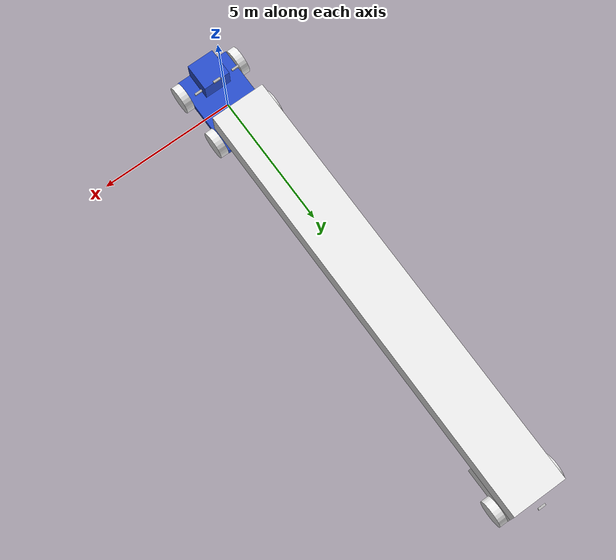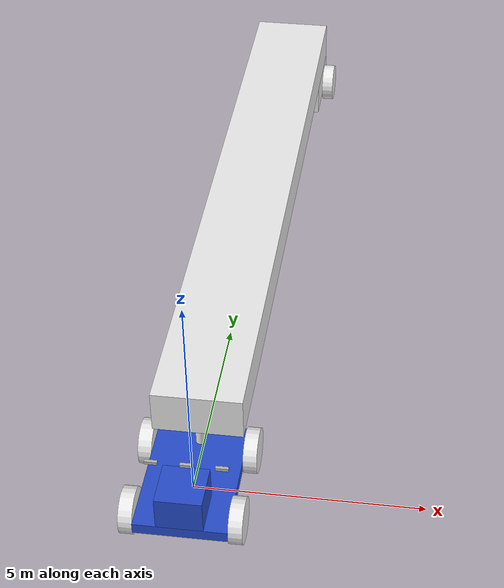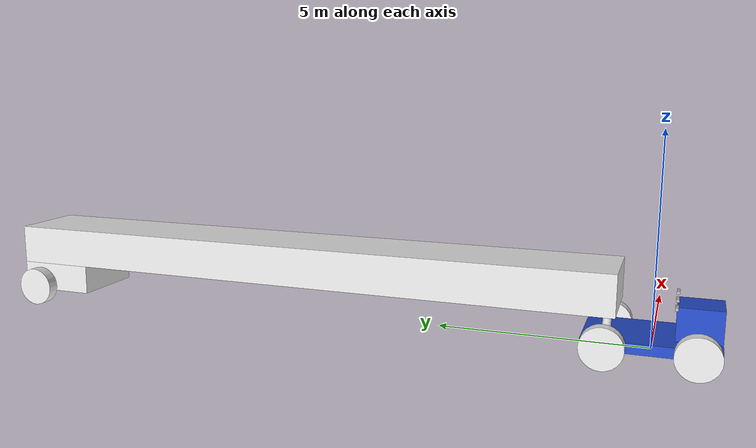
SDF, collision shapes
<?xml version='1.0'?>
<sdf version='1.7'>
  <model name='TractorTrailer_0'>
    <link name='Tractor_Body'>
      <inertial>
        <pose>0 0 0.250023 0 -0 0</pose>
        <mass>6501</mass>
        <inertia>
          <ixx>4909.04</ixx>
          <ixy>0</ixy>
          <ixz>0</ixz>
          <iyy>2200.71</iyy>
          <iyz>0</iyz>
          <izz>7041.84</izz>
        </inertia>
      </inertial>
      <self_collide>0</self_collide>
      <enable_wind>0</enable_wind>
      <kinematic>0</kinematic>
      <pose>0 0 0 0 -0 0</pose>
      <visual name='Tractor_Body_visual'>
        <pose>0 0 0.25 0 -0 0</pose>
        <geometry>
          <box>
            <size>2 3 0.25</size>
          </box>
        </geometry>
        <material>
          <script>
            <name>Gazebo/Blue</name>
            <uri>file://media/materials/scripts/gazebo.material</uri>
          </script>
          <shader type='pixel'/>
        </material>
        <transparency>0</transparency>
        <cast_shadows>1</cast_shadows>
      </visual>
      <visual name='Tractor_Body_fixed_joint_lump__Tractor_Weighted_Base_visual_1'>
        <pose>0 0 0.25 0 -0 0</pose>
        <geometry>
          <box>
            <size>2 3 0.25</size>
          </box>
        </geometry>
        <material>
          <script>
            <name>Gazebo/Blue</name>
            <uri>file://media/materials/scripts/gazebo.material</uri>
          </script>
          <shader type='pixel'/>
        </material>
        <transparency>0</transparency>
        <cast_shadows>1</cast_shadows>
      </visual>
      <visual name='Tractor_Body_fixed_joint_lump__Tractor_Cab_visual_2'>
        <pose>0 -1 0.65 0 -0 0</pose>
        <geometry>
          <box>
            <size>1 1 1</size>
          </box>
        </geometry>
        <material>
          <script>
            <name>Gazebo/Blue</name>
            <uri>file://media/materials/scripts/gazebo.material</uri>
          </script>
          <shader type='pixel'/>
        </material>
        <transparency>0</transparency>
        <cast_shadows>1</cast_shadows>
      </visual>
      <collision name='Tractor_Body_collision'>
        <laser_retro>0</laser_retro>
        <max_contacts>10</max_contacts>
        <pose>0 0 0.25 0 -0 0</pose>
        <geometry>
          <box>
            <size>2 3 0.25</size>
          </box>
        </geometry>
        <surface>
          <friction>
            <ode>
              <mu>1</mu>
              <mu2>1</mu2>
              <fdir1>0 0 0</fdir1>
              <slip1>0</slip1>
              <slip2>0</slip2>
            </ode>
            <torsional>
              <coefficient>1</coefficient>
              <patch_radius>0</patch_radius>
              <surface_radius>0</surface_radius>
              <use_patch_radius>1</use_patch_radius>
              <ode>
                <slip>0</slip>
              </ode>
            </torsional>
          </friction>
          <bounce>
            <restitution_coefficient>0</restitution_coefficient>
            <threshold>1e+06</threshold>
          </bounce>
          <contact>
            <collide_without_contact>0</collide_without_contact>
            <collide_without_contact_bitmask>1</collide_without_contact_bitmask>
            <collide_bitmask>1</collide_bitmask>
            <ode>
              <soft_cfm>0</soft_cfm>
              <soft_erp>0.2</soft_erp>
              <kp>1e+13</kp>
              <kd>1</kd>
              <max_vel>0.01</max_vel>
              <min_depth>0</min_depth>
            </ode>
            <bullet>
              <split_impulse>1</split_impulse>
              <split_impulse_penetration_threshold>-0.01</split_impulse_penetration_threshold>
              <soft_cfm>0</soft_cfm>
              <soft_erp>0.2</soft_erp>
              <kp>1e+13</kp>
              <kd>1</kd>
            </bullet>
          </contact>
        </surface>
      </collision>
      <collision name='Tractor_Body_fixed_joint_lump__Tractor_Weighted_Base_collision_1'>
        <laser_retro>0</laser_retro>
        <max_contacts>10</max_contacts>
        <pose>0 0 0.25 0 -0 0</pose>
        <geometry>
          <box>
            <size>2 3 0.25</size>
          </box>
        </geometry>
        <surface>
          <friction>
            <ode>
              <mu>1</mu>
              <mu2>1</mu2>
              <fdir1>0 0 0</fdir1>
              <slip1>0</slip1>
              <slip2>0</slip2>
            </ode>
            <torsional>
              <coefficient>1</coefficient>
              <patch_radius>0</patch_radius>
              <surface_radius>0</surface_radius>
              <use_patch_radius>1</use_patch_radius>
              <ode>
                <slip>0</slip>
              </ode>
            </torsional>
          </friction>
          <bounce>
            <restitution_coefficient>0</restitution_coefficient>
            <threshold>1e+06</threshold>
          </bounce>
          <contact>
            <collide_without_contact>0</collide_without_contact>
            <collide_without_contact_bitmask>1</collide_without_contact_bitmask>
            <collide_bitmask>1</collide_bitmask>
            <ode>
              <soft_cfm>0</soft_cfm>
              <soft_erp>0.2</soft_erp>
              <kp>1e+13</kp>
              <kd>1</kd>
              <max_vel>0.01</max_vel>
              <min_depth>0</min_depth>
            </ode>
            <bullet>
              <split_impulse>1</split_impulse>
              <split_impulse_penetration_threshold>-0.01</split_impulse_penetration_threshold>
              <soft_cfm>0</soft_cfm>
              <soft_erp>0.2</soft_erp>
              <kp>1e+13</kp>
              <kd>1</kd>
            </bullet>
          </contact>
        </surface>
      </collision>
      <collision name='Tractor_Body_fixed_joint_lump__Tractor_Cab_collision_2'>
        <laser_retro>0</laser_retro>
        <max_contacts>10</max_contacts>
        <pose>0 -1 0.65 0 -0 0</pose>
        <geometry>
          <box>
            <size>1 1 1</size>
          </box>
        </geometry>
        <surface>
          <friction>
            <ode>
              <mu>1</mu>
              <mu2>1</mu2>
              <fdir1>0 0 0</fdir1>
              <slip1>0</slip1>
              <slip2>0</slip2>
            </ode>
            <torsional>
              <coefficient>1</coefficient>
              <patch_radius>0</patch_radius>
              <surface_radius>0</surface_radius>
              <use_patch_radius>1</use_patch_radius>
              <ode>
                <slip>0</slip>
              </ode>
            </torsional>
          </friction>
          <bounce>
            <restitution_coefficient>0</restitution_coefficient>
            <threshold>1e+06</threshold>
          </bounce>
          <contact>
            <collide_without_contact>0</collide_without_contact>
            <collide_without_contact_bitmask>1</collide_without_contact_bitmask>
            <collide_bitmask>1</collide_bitmask>
            <ode>
              <soft_cfm>0</soft_cfm>
              <soft_erp>0.2</soft_erp>
              <kp>1e+13</kp>
              <kd>1</kd>
              <max_vel>0.01</max_vel>
              <min_depth>0</min_depth>
            </ode>
            <bullet>
              <split_impulse>1</split_impulse>
              <split_impulse_penetration_threshold>-0.01</split_impulse_penetration_threshold>
              <soft_cfm>0</soft_cfm>
              <soft_erp>0.2</soft_erp>
              <kp>1e+13</kp>
              <kd>1</kd>
            </bullet>
          </contact>
        </surface>
      </collision>
    </link>
    <link name='Front_Axle'>
      <pose>1e-06 -1 0.25 0 -0 0</pose>
      <inertial>
        <pose>0 0 0 0 -0 0</pose>
        <mass>1</mass>
        <inertia>
          <ixx>0</ixx>
          <ixy>0</ixy>
          <ixz>0</ixz>
          <iyy>0</iyy>
          <iyz>0</iyz>
          <izz>0</izz>
        </inertia>
      </inertial>
      <self_collide>0</self_collide>
      <enable_wind>0</enable_wind>
      <kinematic>0</kinematic>
      <visual name='Front_Axle_visual'>
        <pose>0 0 0 -3.1415 1.57079 3.14159</pose>
        <geometry>
          <cylinder>
            <length>2</length>
            <radius>0.1</radius>
          </cylinder>
        </geometry>
        <material>
          <script>
            <name>Gazebo/White</name>
            <uri>file://media/materials/scripts/gazebo.material</uri>
          </script>
          <shader type='pixel'/>
        </material>
        <transparency>0</transparency>
        <cast_shadows>1</cast_shadows>
      </visual>
      <collision name='Front_Axle_collision'>
        <laser_retro>0</laser_retro>
        <max_contacts>10</max_contacts>
        <pose>0 0 0 -3.1415 1.57079 3.14159</pose>
        <geometry>
          <cylinder>
            <radius>0.1</radius>
            <length>2</length>
          </cylinder>
        </geometry>
        <surface>
          <friction>
            <ode>
              <mu>1</mu>
              <mu2>1</mu2>
              <fdir1>0 0 0</fdir1>
              <slip1>0</slip1>
              <slip2>0</slip2>
            </ode>
            <torsional>
              <coefficient>1</coefficient>
              <patch_radius>0</patch_radius>
              <surface_radius>0</surface_radius>
              <use_patch_radius>1</use_patch_radius>
              <ode>
                <slip>0</slip>
              </ode>
            </torsional>
          </friction>
          <bounce>
            <restitution_coefficient>0</restitution_coefficient>
            <threshold>1e+06</threshold>
          </bounce>
          <contact>
            <collide_without_contact>0</collide_without_contact>
            <collide_without_contact_bitmask>1</collide_without_contact_bitmask>
            <collide_bitmask>1</collide_bitmask>
            <ode>
              <soft_cfm>0</soft_cfm>
              <soft_erp>0.2</soft_erp>
              <kp>1e+13</kp>
              <kd>1</kd>
              <max_vel>0.01</max_vel>
              <min_depth>0</min_depth>
            </ode>
            <bullet>
              <split_impulse>1</split_impulse>
              <split_impulse_penetration_threshold>-0.01</split_impulse_penetration_threshold>
              <soft_cfm>0</soft_cfm>
              <soft_erp>0.2</soft_erp>
              <kp>1e+13</kp>
              <kd>1</kd>
            </bullet>
          </contact>
        </surface>
      </collision>
    </link>
    <link name='Tractor_front_driv_wheel'>
      <pose>1.15 -0.999999 0.25 0 -0 0</pose>
      <inertial>
        <pose>0 0 0 0 -0 0</pose>
        <mass>50</mass>
        <inertia>
          <ixx>2.45</ixx>
          <ixy>0</ixy>
          <ixz>0</ixz>
          <iyy>2.45</iyy>
          <iyz>0</iyz>
          <izz>4.375</izz>
        </inertia>
      </inertial>
      <self_collide>0</self_collide>
      <enable_wind>0</enable_wind>
      <kinematic>0</kinematic>
      <visual name='Tractor_front_driv_wheel_visual'>
        <pose>0 0 0 -3.1415 1.57079 3.14159</pose>
        <geometry>
          <cylinder>
            <length>0.3</length>
            <radius>0.5</radius>
          </cylinder>
        </geometry>
        <material>
          <script>
            <name>Gazebo/White</name>
            <uri>file://media/materials/scripts/gazebo.material</uri>
          </script>
          <shader type='pixel'/>
        </material>
        <transparency>0</transparency>
        <cast_shadows>1</cast_shadows>
      </visual>
      <collision name='Tractor_front_driv_wheel_collision'>
        <laser_retro>0</laser_retro>
        <max_contacts>10</max_contacts>
        <pose>0 0 0 -3.1415 1.57079 3.14159</pose>
        <geometry>
          <cylinder>
            <radius>0.5</radius>
            <length>0.3</length>
          </cylinder>
        </geometry>
        <surface>
          <friction>
            <ode>
              <mu>1</mu>
              <mu2>1</mu2>
              <fdir1>0 0 0</fdir1>
              <slip1>0</slip1>
              <slip2>0</slip2>
            </ode>
            <torsional>
              <coefficient>1</coefficient>
              <patch_radius>0</patch_radius>
              <surface_radius>0</surface_radius>
              <use_patch_radius>1</use_patch_radius>
              <ode>
                <slip>0</slip>
              </ode>
            </torsional>
          </friction>
          <bounce>
            <restitution_coefficient>0</restitution_coefficient>
            <threshold>1e+06</threshold>
          </bounce>
          <contact>
            <collide_without_contact>0</collide_without_contact>
            <collide_without_contact_bitmask>1</collide_without_contact_bitmask>
            <collide_bitmask>1</collide_bitmask>
            <ode>
              <soft_cfm>0</soft_cfm>
              <soft_erp>0.2</soft_erp>
              <kp>1e+13</kp>
              <kd>1</kd>
              <max_vel>0.01</max_vel>
              <min_depth>0</min_depth>
            </ode>
            <bullet>
              <split_impulse>1</split_impulse>
              <split_impulse_penetration_threshold>-0.01</split_impulse_penetration_threshold>
              <soft_cfm>0</soft_cfm>
              <soft_erp>0.2</soft_erp>
              <kp>1e+13</kp>
              <kd>1</kd>
            </bullet>
          </contact>
        </surface>
      </collision>
    </link>
    <link name='Tractor_front_pass_wheel'>
      <pose>-1.15 -1 0.25 0 -0 0</pose>
      <inertial>
        <pose>0 0 0 0 -0 0</pose>
        <mass>50</mass>
        <inertia>
          <ixx>3.5</ixx>
          <ixy>0</ixy>
          <ixz>0</ixz>
          <iyy>3.5</iyy>
          <iyz>0</iyz>
          <izz>6.25</izz>
        </inertia>
      </inertial>
      <self_collide>0</self_collide>
      <enable_wind>0</enable_wind>
      <kinematic>0</kinematic>
      <visual name='Tractor_front_pass_wheel_visual'>
        <pose>0 0 0 -3.1415 1.57079 3.14159</pose>
        <geometry>
          <cylinder>
            <length>0.3</length>
            <radius>0.5</radius>
          </cylinder>
        </geometry>
        <material>
          <script>
            <name>Gazebo/White</name>
            <uri>file://media/materials/scripts/gazebo.material</uri>
          </script>
          <shader type='pixel'/>
        </material>
        <transparency>0</transparency>
        <cast_shadows>1</cast_shadows>
      </visual>
      <collision name='Tractor_front_pass_wheel_collision'>
        <laser_retro>0</laser_retro>
        <max_contacts>10</max_contacts>
        <pose>0 0 0 -3.1415 1.57079 3.14159</pose>
        <geometry>
          <cylinder>
            <radius>0.5</radius>
            <length>0.3</length>
          </cylinder>
        </geometry>
        <surface>
          <friction>
            <ode>
              <mu>1</mu>
              <mu2>1</mu2>
              <fdir1>0 0 0</fdir1>
              <slip1>0</slip1>
              <slip2>0</slip2>
            </ode>
            <torsional>
              <coefficient>1</coefficient>
              <patch_radius>0</patch_radius>
              <surface_radius>0</surface_radius>
              <use_patch_radius>1</use_patch_radius>
              <ode>
                <slip>0</slip>
              </ode>
            </torsional>
          </friction>
          <bounce>
            <restitution_coefficient>0</restitution_coefficient>
            <threshold>1e+06</threshold>
          </bounce>
          <contact>
            <collide_without_contact>0</collide_without_contact>
            <collide_without_contact_bitmask>1</collide_without_contact_bitmask>
            <collide_bitmask>1</collide_bitmask>
            <ode>
              <soft_cfm>0</soft_cfm>
              <soft_erp>0.2</soft_erp>
              <kp>1e+13</kp>
              <kd>1</kd>
              <max_vel>0.01</max_vel>
              <min_depth>0</min_depth>
            </ode>
            <bullet>
              <split_impulse>1</split_impulse>
              <split_impulse_penetration_threshold>-0.01</split_impulse_penetration_threshold>
              <soft_cfm>0</soft_cfm>
              <soft_erp>0.2</soft_erp>
              <kp>1e+13</kp>
              <kd>1</kd>
            </bullet>
          </contact>
        </surface>
      </collision>
    </link>

    <model name='sonar1'>
      <pose>0 -0.5 1.20 0 0 1.57</pose>
      <link name='sonar1_link'>
        <inertial>
          <mass>0.1</mass>
        </inertial>
        <collision name='collision'>
          <geometry>
            <box>
              <size>0.073 0.276 0.072</size>
            </box>
          </geometry>
        </collision>
      <sensor type="ray" name="sonar">
        <pose>0 0 0 0 0 0</pose>
        <update_rate>5</update_rate>
        <visualize>true</visualize>
        <ray>
          <scan>
            <horizontal>
              <samples>5</samples>
              <min_angle>-.1</min_angle>
              <max_angle>.1</max_angle>
            </horizontal>
            <vertical>
              <samples>10</samples>
              <resolution>1</resolution>
              <min_angle>-.1</min_angle>
              <max_angle>.1</max_angle>
            </vertical>
          </scan>
          <range>
            <min>0.2</min>
            <max>5.00</max>
            <resolution>0.01</resolution>
          </range>
        </ray>
        <plugin filename="libgazebo_ros_range.so" name="gazebo_ros_range">
          <gaussianNoise>0.005</gaussianNoise>
          <alwaysOn>true</alwaysOn>
          <updateRate>5</updateRate>
          <topicName>sonar1</topicName>
          <frameName>sonar1_link</frameName>
          <fov>0.5</fov>
          <radiation>ultrasound</radiation>
        </plugin>
      </sensor>
    </link>
  </model>

  <joint name='Tractor_Sonar1_Joint' type='fixed'>
      <parent>Tractor_Body</parent>
      <child>sonar1::sonar1_link</child>
      <pose>0 0 0 0 -0 0</pose>
      <physics>
        <ode>
          <limit>
            <cfm>0</cfm>
            <erp>0.2</erp>
          </limit>
          <suspension>
            <cfm>0</cfm>
            <erp>0.2</erp>
          </suspension>
        </ode>
      </physics>
    </joint>

    <model name='sonar2'>
      <pose>-0.75 -0.5 1.20 0 0 1.57</pose>
      <link name='sonar2_link'>
        <inertial>
          <mass>0.1</mass>
        </inertial>
        <collision name='collision'>
          <geometry>
            <box>
              <size>0.073 0.276 0.072</size>
            </box>
          </geometry>
        </collision>
      <sensor type="ray" name="sonar">
        <pose>0 0 0 0 0 0</pose>
        <update_rate>5</update_rate>
        <visualize>true</visualize>
        <ray>
          <scan>
            <horizontal>
              <samples>5</samples>
              <min_angle>-.1</min_angle>
              <max_angle>.1</max_angle>
            </horizontal>
            <vertical>
              <samples>10</samples>
              <resolution>1</resolution>
              <min_angle>-.1</min_angle>
              <max_angle>.1</max_angle>
            </vertical>
          </scan>
          <range>
            <min>0.2</min>
            <max>5.00</max>
            <resolution>0.01</resolution>
          </range>
        </ray>
        <plugin filename="libgazebo_ros_range.so" name="gazebo_ros_range">
          <gaussianNoise>0.005</gaussianNoise>
          <alwaysOn>true</alwaysOn>
          <updateRate>5</updateRate>
          <topicName>sonar2</topicName>
          <frameName>sonar2_link</frameName>
          <fov>0.5</fov>
          <radiation>ultrasound</radiation>
        </plugin>
      </sensor>
      <gravity>false</gravity>
      <self_collide>false</self_collide>
      <kinematic>false</kinematic>
    </link>
  </model>

  <joint name='Tractor_Sonar2_Joint' type='fixed'>
      <parent>Tractor_Body</parent>
      <child>sonar2::sonar2_link</child>
      <pose>0 0 0 0 -0 0</pose>
      <physics>
        <ode>
          <limit>
            <cfm>0</cfm>
            <erp>0.2</erp>
          </limit>
          <suspension>
            <cfm>0</cfm>
            <erp>0.2</erp>
          </suspension>
        </ode>
      </physics>
    </joint>

     <model name='sonar3'>
      <pose>0.75 -0.5 1.20 0 0 1.57</pose>
      <link name='sonar3_link'>
        <inertial>
          <mass>0.1</mass>
        </inertial>
        <collision name='collision'>
          <geometry>
            <box>
              <size>0.073 0.276 0.072</size>
            </box>
          </geometry>
        </collision>
      <sensor type="ray" name="sonar">
        <pose>0 0 0 0 0 0</pose>
        <update_rate>5</update_rate>
        <visualize>true</visualize>
        <ray>
          <scan>
            <horizontal>
              <samples>5</samples>
              <min_angle>-.1</min_angle>
              <max_angle>.1</max_angle>
            </horizontal>
            <vertical>
              <samples>10</samples>
              <resolution>1</resolution>
              <min_angle>-.1</min_angle>
              <max_angle>.1</max_angle>
            </vertical>
          </scan>
          <range>
            <min>0.2</min>
            <max>5.00</max>
            <resolution>0.01</resolution>
          </range>
        </ray>
        <plugin filename="libgazebo_ros_range.so" name="gazebo_ros_range">
          <gaussianNoise>0.005</gaussianNoise>
          <alwaysOn>true</alwaysOn>
          <updateRate>5</updateRate>
          <topicName>sonar3</topicName>
          <frameName>sonar3_link</frameName>
          <fov>0.5</fov>
          <radiation>ultrasound</radiation>
        </plugin>
      </sensor>
      <gravity>false</gravity>
      <self_collide>false</self_collide>
      <kinematic>false</kinematic>
    </link>
  </model>

  <joint name='Tractor_Sonar3_Joint' type='fixed'>
      <parent>Tractor_Body</parent>
      <child>sonar3::sonar3_link</child>
      <pose>0 0 0 0 -0 0</pose>
      <physics>
        <ode>
          <limit>
            <cfm>0</cfm>
            <erp>0.2</erp>
          </limit>
          <suspension>
            <cfm>0</cfm>
            <erp>0.2</erp>
          </suspension>
        </ode>
      </physics>
    </joint>
  KINECT
    <!--
     ++++++++++++++++++KINECT UNITS+++++++++++++++++++++++++++
    -->

    <model name='kinect_ros'>
      <pose>0 17 1.20 0 0 1.57</pose>
      <link name='link'>
        <inertial>
          <mass>0.1</mass>
        </inertial>
        <collision name='collision'>
          <geometry>
            <box>
              <size>0.073 0.276 0.072</size>
            </box>
          </geometry>
        </collision>
        <visual name='visual'>
          <geometry>
            <mesh>
              <uri>model://kinect/meshes/kinect.dae</uri>
            </mesh>
          </geometry>
        </visual>
        <sensor name='camera' type='depth'>
          <update_rate>20</update_rate>
          <camera>
            <horizontal_fov>1.0472</horizontal_fov>
            <image>
              <width>1920</width>
              <height>1080</height>
              <format>R8G8B8</format>
            </image>
            <clip>
              <near>0.05</near>
              <far>100</far>
            </clip>
          </camera>
          <plugin name='camera_plugin' filename='libgazebo_ros_openni_kinect.so'>
            <baseline>0.2</baseline>
            <alwaysOn>1</alwaysOn>
            <updateRate>0.0</updateRate>
            <cameraName>camera_ir</cameraName>
            <imageTopicName>/camera/color/image_raw</imageTopicName>
            <cameraInfoTopicName>/camera/color/camera_info</cameraInfoTopicName>
            <depthImageTopicName>/camera/depth/image_raw</depthImageTopicName>
            <depthImageCameraInfoTopicName>/camera/depth/camera_info</depthImageCameraInfoTopicName>
            <pointCloudTopicName>/camera/depth/points</pointCloudTopicName>
            <frameName>camera_link</frameName>
            <pointCloudCutoff>0.2</pointCloudCutoff>
            <pointCloudCutoffMax>30.0</pointCloudCutoffMax>
            <distortionK1>0</distortionK1>
            <distortionK2>0</distortionK2>
            <distortionK3>0</distortionK3>
            <distortionT1>0</distortionT1>
            <distortionT2>0</distortionT2>
            <CxPrime>0</CxPrime>
            <Cx>0</Cx>
            <Cy>0</Cy>
            <focalLength>0</focalLength>
            <hackBaseline>0</hackBaseline>
          </plugin>
        </sensor>
      </link>
    </model>

    <link name='Tractor_rear_driv_wheel'>
      <pose>1.15 1 0.2525 0 -0 0</pose>
      <inertial>
        <pose>0 0 0 0 -0 0</pose>
        <mass>100</mass>
        <inertia>
          <ixx>7</ixx>
          <ixy>0</ixy>
          <ixz>0</ixz>
          <iyy>7</iyy>
          <iyz>0</iyz>
          <izz>12.5</izz>
        </inertia>
      </inertial>
      <self_collide>0</self_collide>
      <enable_wind>0</enable_wind>
      <kinematic>0</kinematic>
      <visual name='Tractor_rear_driv_wheel_visual'>
        <pose>0 0 0 -3.1415 1.57079 3.14159</pose>
        <geometry>
          <cylinder>
            <length>0.3</length>
            <radius>0.5</radius>
          </cylinder>
        </geometry>
        <material>
          <script>
            <name>Gazebo/White</name>
            <uri>file://media/materials/scripts/gazebo.material</uri>
          </script>
          <shader type='pixel'/>
        </material>
        <transparency>0</transparency>
        <cast_shadows>1</cast_shadows>
      </visual>
      <collision name='Tractor_rear_driv_wheel_collision'>
        <laser_retro>0</laser_retro>
        <max_contacts>10</max_contacts>
        <pose>0 0 0 -3.1415 1.57079 3.14159</pose>
        <geometry>
          <cylinder>
            <radius>0.5</radius>
            <length>0.3</length>
          </cylinder>
        </geometry>
        <surface>
          <friction>
            <ode>
              <mu>1</mu>
              <mu2>1</mu2>
              <fdir1>0 0 0</fdir1>
              <slip1>0</slip1>
              <slip2>0</slip2>
            </ode>
            <torsional>
              <coefficient>1</coefficient>
              <patch_radius>0</patch_radius>
              <surface_radius>0</surface_radius>
              <use_patch_radius>1</use_patch_radius>
              <ode>
                <slip>0</slip>
              </ode>
            </torsional>
          </friction>
          <bounce>
            <restitution_coefficient>0</restitution_coefficient>
            <threshold>1e+06</threshold>
          </bounce>
          <contact>
            <collide_without_contact>0</collide_without_contact>
            <collide_without_contact_bitmask>1</collide_without_contact_bitmask>
            <collide_bitmask>1</collide_bitmask>
            <ode>
              <soft_cfm>0</soft_cfm>
              <soft_erp>0.2</soft_erp>
              <kp>1e+13</kp>
              <kd>1</kd>
              <max_vel>0.01</max_vel>
              <min_depth>0</min_depth>
            </ode>
            <bullet>
              <split_impulse>1</split_impulse>
              <split_impulse_penetration_threshold>-0.01</split_impulse_penetration_threshold>
              <soft_cfm>0</soft_cfm>
              <soft_erp>0.2</soft_erp>
              <kp>1e+13</kp>
              <kd>1</kd>
            </bullet>
          </contact>
        </surface>
      </collision>
    </link>
    <link name='Tractor_rear_pass_wheel'>
      <pose>-1.15 0.999999 0.2525 0 -0 0</pose>
      <inertial>
        <pose>0 0 0 0 -0 0</pose>
        <mass>100</mass>
        <inertia>
          <ixx>7</ixx>
          <ixy>0</ixy>
          <ixz>0</ixz>
          <iyy>7</iyy>
          <iyz>0</iyz>
          <izz>12.5</izz>
        </inertia>
      </inertial>
      <self_collide>0</self_collide>
      <enable_wind>0</enable_wind>
      <kinematic>0</kinematic>
      <visual name='Tractor_rear_pass_wheel_visual'>
        <pose>0 0 0 -3.1415 1.57079 3.14159</pose>
        <geometry>
          <cylinder>
            <length>0.3</length>
            <radius>0.5</radius>
          </cylinder>
        </geometry>
        <material>
          <script>
            <name>Gazebo/White</name>
            <uri>file://media/materials/scripts/gazebo.material</uri>
          </script>
          <shader type='pixel'/>
        </material>
        <transparency>0</transparency>
        <cast_shadows>1</cast_shadows>
      </visual>
      <collision name='Tractor_rear_pass_wheel_collision'>
        <laser_retro>0</laser_retro>
        <max_contacts>10</max_contacts>
        <pose>0 0 0 -3.1415 1.57079 3.14159</pose>
        <geometry>
          <cylinder>
            <radius>0.5</radius>
            <length>0.3</length>
          </cylinder>
        </geometry>
        <surface>
          <friction>
            <ode>
              <mu>1</mu>
              <mu2>1</mu2>
              <fdir1>0 0 0</fdir1>
              <slip1>0</slip1>
              <slip2>0</slip2>
            </ode>
            <torsional>
              <coefficient>1</coefficient>
              <patch_radius>0</patch_radius>
              <surface_radius>0</surface_radius>
              <use_patch_radius>1</use_patch_radius>
              <ode>
                <slip>0</slip>
              </ode>
            </torsional>
          </friction>
          <bounce>
            <restitution_coefficient>0</restitution_coefficient>
            <threshold>1e+06</threshold>
          </bounce>
          <contact>
            <collide_without_contact>0</collide_without_contact>
            <collide_without_contact_bitmask>1</collide_without_contact_bitmask>
            <collide_bitmask>1</collide_bitmask>
            <ode>
              <soft_cfm>0</soft_cfm>
              <soft_erp>0.2</soft_erp>
              <kp>1e+13</kp>
              <kd>1</kd>
              <max_vel>0.01</max_vel>
              <min_depth>0</min_depth>
            </ode>
            <bullet>
              <split_impulse>1</split_impulse>
              <split_impulse_penetration_threshold>-0.01</split_impulse_penetration_threshold>
              <soft_cfm>0</soft_cfm>
              <soft_erp>0.2</soft_erp>
              <kp>1e+13</kp>
              <kd>1</kd>
            </bullet>
          </contact>
        </surface>
      </collision>
    </link>
    <link name='Trailer_Hitch'>
      <pose>-0 0.999999 0.64 0 -0 0</pose>
      <inertial>
        <pose>0 7.74995 0.749892 0 -0 0</pose>
        <mass>15002</mass>
        <inertia>
          <ixx>321361</ixx>
          <ixy>0</ixy>
          <ixz>0</ixz>
          <iyy>6251.64</iyy>
          <iyz>0.312581</iyz>
          <izz>325109</izz>
        </inertia>
      </inertial>
      <self_collide>0</self_collide>
      <enable_wind>0</enable_wind>
      <kinematic>0</kinematic>
      <visual name='Trailer_Hitch_visual'>
        <pose>0 0 0 0 -0 0</pose>
        <geometry>
          <cylinder>
            <length>0.5</length>
            <radius>0.1</radius>
          </cylinder>
        </geometry>
        <material>
          <script>
            <name>Gazebo/White</name>
            <uri>file://media/materials/scripts/gazebo.material</uri>
          </script>
          <shader type='pixel'/>
        </material>
        <transparency>0</transparency>
        <cast_shadows>1</cast_shadows>
      </visual>
      <visual name='Trailer_Hitch_fixed_joint_lump__Trailer_Body_visual_1'>
        <pose>0 7.75 0.75 0 -0 0</pose>
        <geometry>
          <box>
            <size>2 16 1</size>
          </box>
        </geometry>
        <material>
          <script>
            <name>Gazebo/White</name>
            <uri>file://media/materials/scripts/gazebo.material</uri>
          </script>
          <shader type='pixel'/>
        </material>
        <transparency>0</transparency>
        <cast_shadows>1</cast_shadows>
      </visual>
      <visual name='Trailer_Hitch_fixed_joint_lump__Trailer_Bottom_visual_2'>
        <pose>0 14.75 -0.125 0 -0 0</pose>
        <geometry>
          <box>
            <size>2 2 0.75</size>
          </box>Trailer_Body
        </geometry>
        <material>
          <script>
            <name>Gazebo/Blue</name>
            <uri>file://media/materials/scripts/gazebo.material</uri>
          </script>
          <shader type='pixel'/>
        </material>
        <transparency>0</transparency>
        <cast_shadows>1</cast_shadows>
      </visual>
      <collision name='Trailer_Hitch_collision'>
        <laser_retro>0</laser_retro>
        <max_contacts>10</max_contacts>
        <pose>0 0 0 0 -0 0</pose>
        <geometry>
          <cylinder>
            <radius>0.1</radius>
            <length>0.5</length>
          </cylinder>
        </geometry>
        <surface>
          <friction>
            <ode>
              <mu>1</mu>
              <mu2>1</mu2>
              <fdir1>0 0 0</fdir1>
              <slip1>0</slip1>
              <slip2>0</slip2>
            </ode>
            <torsional>
              <coefficient>1</coefficient>
              <patch_radius>0</patch_radius>
              <surface_radius>0</surface_radius>
              <use_patch_radius>1</use_patch_radius>
              <ode>
                <slip>0</slip>
              </ode>
            </torsional>
          </friction>
          <bounce>
            <restitution_coefficient>0</restitution_coefficient>
            <threshold>1e+06</threshold>
          </bounce>
          <contact>
            <collide_without_contact>0</collide_without_contact>
            <collide_without_contact_bitmask>1</collide_without_contact_bitmask>
            <collide_bitmask>1</collide_bitmask>
            <ode>
              <soft_cfm>0</soft_cfm>
              <soft_erp>0.2</soft_erp>
              <kp>1e+13</kp>
              <kd>1</kd>
              <max_vel>0.01</max_vel>
              <min_depth>0</min_depth>
            </ode>
            <bullet>
              <split_impulse>1</split_impulse>
              <split_impulse_penetration_threshold>-0.01</split_impulse_penetration_threshold>
              <soft_cfm>0</soft_cfm>
              <soft_erp>0.2</soft_erp>
              <kp>1e+13</kp>
              <kd>1</kd>
            </bullet>
          </contact>
        </surface>
      </collision>
      <collision name='Trailer_Hitch_fixed_joint_lump__Trailer_Body_collision_1'>
        <laser_retro>0</laser_retro>
        <max_contacts>10</max_contacts>
        <pose>0 7.75 0.75 0 -0 0</pose>
        <geometry>
          <box>
            <size>2 16 1</size>
          </box>
        </geometry>
        <surface>
          <friction>
            <ode>
              <mu>1</mu>
              <mu2>1</mu2>
              <fdir1>0 0 0</fdir1>
              <slip1>0</slip1>
              <slip2>0</slip2>
            </ode>
            <torsional>
              <coefficient>1</coefficient>
              <patch_radius>0</patch_radius>
              <surface_radius>0</surface_radius>
              <use_patch_radius>1</use_patch_radius>
              <ode>
                <slip>0</slip>
              </ode>
            </torsional>
          </friction>
          <bounce>
            <restitution_coefficient>0</restitution_coefficient>
            <threshold>1e+06</threshold>
          </bounce>
          <contact>
            <collide_without_contact>0</collide_without_contact>
            <collide_without_contact_bitmask>1</collide_without_contact_bitmask>
            <collide_bitmask>1</collide_bitmask>
            <ode>
              <soft_cfm>0</soft_cfm>
              <soft_erp>0.2</soft_erp>
              <kp>1e+13</kp>
              <kd>1</kd>
              <max_vel>0.01</max_vel>
              <min_depth>0</min_depth>
            </ode>
            <bullet>
              <split_impulse>1</split_impulse>
              <split_impulse_penetration_threshold>-0.01</split_impulse_penetration_threshold>
              <soft_cfm>0</soft_cfm>
              <soft_erp>0.2</soft_erp>
              <kp>1e+13</kp>
              <kd>1</kd>
            </bullet>
          </contact>
        </surface>
      </collision>
      <collision name='Trailer_Hitch_fixed_joint_lump__Trailer_Bottom_collision_2'>
        <laser_retro>0</laser_retro>
        <max_contacts>10</max_contacts>
        <pose>0 14.75 -0.125 0 -0 0</pose>
        <geometry>
          <box>
            <size>2 2 0.75</size>
          </box>
        </geometry>
        <surface>
          <friction>
            <ode>
              <mu>1</mu>
              <mu2>1</mu2>
              <fdir1>0 0 0</fdir1>
              <slip1>0</slip1>
              <slip2>0</slip2>
            </ode>
            <torsional>
              <coefficient>1</coefficient>
              <patch_radius>0</patch_radius>
              <surface_radius>0</surface_radius>
              <use_patch_radius>1</use_patch_radius>
              <ode>
                <slip>0</slip>
              </ode>
            </torsional>
          </friction>
          <bounce>
            <restitution_coefficient>0</restitution_coefficient>
            <threshold>1e+06</threshold>
          </bounce>
          <contact>
            <collide_without_contact>0</collide_without_contact>
            <collide_without_contact_bitmask>1</collide_without_contact_bitmask>
            <collide_bitmask>1</collide_bitmask>
            <ode>
              <soft_cfm>0</soft_cfm>
              <soft_erp>0.2</soft_erp>
              <kp>1e+13</kp>
              <kd>1</kd>
              <max_vel>0.01</max_vel>
              <min_depth>0</min_depth>
            </ode>
            <bullet>
              <split_impulse>1</split_impulse>
              <split_impulse_penetration_threshold>-0.01</split_impulse_penetration_threshold>
              <soft_cfm>0</soft_cfm>
              <soft_erp>0.2</soft_erp>
              <kp>1e+13</kp>
              <kd>1</kd>
            </bullet>
          </contact>
        </surface>
      </collision>
    </link>
    <link name='Trailer_driv_wheel'>
      <pose>1.15 16.25 0.265 0 -0 0</pose>
      <inertial>
        <pose>0 0 0 0 -0 0</pose>
        <mass>100</mass>
        <inertia>
          <ixx>7</ixx>
          <ixy>0</ixy>
          <ixz>0</ixz>
          <iyy>7</iyy>
          <iyz>0</iyz>
          <izz>12.5</izz>
        </inertia>
      </inertial>
      <self_collide>0</self_collide>
      <enable_wind>0</enable_wind>
      <kinematic>0</kinematic>
      <visual name='Trailer_driv_wheel_visual'>
        <pose>0 0 0 -3.1415 1.57079 3.14159</pose>
        <geometry>
          <cylinder>
            <length>0.3</length>
            <radius>0.5</radius>
          </cylinder>
        </geometry>
        <material>
          <script>
            <name>Gazebo/White</name>
            <uri>file://media/materials/scripts/gazebo.material</uri>
          </script>
          <shader type='pixel'/>
        </material>
        <transparency>0</transparency>
        <cast_shadows>1</cast_shadows>
      </visual>
      <collision name='Trailer_driv_wheel_collision'>
        <laser_retro>0</laser_retro>
        <max_contacts>10</max_contacts>
        <pose>0 0 0 -3.1415 1.57079 3.14159</pose>
        <geometry>
          <cylinder>
            <radius>0.5</radius>
            <length>0.3</length>
          </cylinder>
        </geometry>
        <surface>
          <friction>
            <ode>
              <mu>1</mu>
              <mu2>1</mu2>
              <fdir1>0 0 0</fdir1>
              <slip1>0</slip1>
              <slip2>0</slip2>
            </ode>
            <torsional>
              <coefficient>1</coefficient>
              <patch_radius>0</patch_radius>
              <surface_radius>0</surface_radius>
              <use_patch_radius>1</use_patch_radius>
              <ode>
                <slip>0</slip>
              </ode>
            </torsional>
          </friction>
          <bounce>
            <restitution_coefficient>0</restitution_coefficient>
            <threshold>1e+06</threshold>
          </bounce>
          <contact>
            <collide_without_contact>0</collide_without_contact>
            <collide_without_contact_bitmask>1</collide_without_contact_bitmask>
            <collide_bitmask>1</collide_bitmask>
            <ode>
              <soft_cfm>0</soft_cfm>
              <soft_erp>0.2</soft_erp>
              <kp>1e+13</kp>
              <kd>1</kd>
              <max_vel>0.01</max_vel>
              <min_depth>0</min_depth>
            </ode>
            <bullet>
              <split_impulse>1</split_impulse>
              <split_impulse_penetration_threshold>-0.01</split_impulse_penetration_threshold>
              <soft_cfm>0</soft_cfm>
              <soft_erp>0.2</soft_erp>
              <kp>1e+13</kp>
              <kd>1</kd>
            </bullet>
          </contact>
        </surface>
      </collision>
    </link>
    <link name='Trailer_pass_wheel'>
      <pose>-1.15 16.25 0.265 0 -0 0</pose>
      <inertial>
        <pose>0 0 0 0 -0 0</pose>
        <mass>100</mass>
        <inertia>
          <ixx>7</ixx>
          <ixy>0</ixy>
          <ixz>0</ixz>
          <iyy>7</iyy>
          <iyz>0</iyz>
          <izz>12.5</izz>
        </inertia>
      </inertial>
      <self_collide>0</self_collide>
      <enable_wind>0</enable_wind>
      <kinematic>0</kinematic>
      <visual name='Trailer_pass_wheel_visual'>
        <pose>0 0 0 -3.1415 1.57079 3.14159</pose>
        <geometry>
          <cylinder>
            <length>0.3</length>
            <radius>0.5</radius>
          </cylinder>
        </geometry>
        <material>
          <script>
            <name>Gazebo/White</name>
            <uri>file://media/materials/scripts/gazebo.material</uri>
          </script>
          <shader type='pixel'/>
        </material>
        <transparency>0</transparency>
        <cast_shadows>1</cast_shadows>
      </visual>
      <collision name='Trailer_pass_wheel_collision'>
        <laser_retro>0</laser_retro>
        <max_contacts>10</max_contacts>
        <pose>0 0 0 -3.1415 1.57079 3.14159</pose>
        <geometry>
          <cylinder>
            <radius>0.5</radius>
            <length>0.3</length>
          </cylinder>
        </geometry>
        <surface>
          <friction>
            <ode>
              <mu>1</mu>
              <mu2>1</mu2>
              <fdir1>0 0 0</fdir1>
              <slip1>0</slip1>
              <slip2>0</slip2>
            </ode>
            <torsional>
              <coefficient>1</coefficient>
              <patch_radius>0</patch_radius>
              <surface_radius>0</surface_radius>
              <use_patch_radius>1</use_patch_radius>
              <ode>
                <slip>0</slip>
              </ode>
            </torsional>
          </friction>
          <bounce>
            <restitution_coefficient>0</restitution_coefficient>
            <threshold>1e+06</threshold>
          </bounce>
          <contact>
            <collide_without_contact>0</collide_without_contact>
            <collide_without_contact_bitmask>1</collide_without_contact_bitmask>
            <collide_bitmask>1</collide_bitmask>
            <ode>
              <soft_cfm>0</soft_cfm>
              <soft_erp>0.2</soft_erp>
              <kp>1e+13</kp>
              <kd>1</kd>
              <max_vel>0.01</max_vel>
              <min_depth>0</min_depth>
            </ode>
            <bullet>
              <split_impulse>1</split_impulse>
              <split_impulse_penetration_threshold>-0.01</split_impulse_penetration_threshold>
              <soft_cfm>0</soft_cfm>
              <soft_erp>0.2</soft_erp>
              <kp>1e+13</kp>
              <kd>1</kd>
            </bullet>
          </contact>
        </surface>
      </collision>
    </link>
    <joint name='Fifth_Wheel' type='revolute'>
      <parent>Tractor_Body</parent>
      <child>Trailer_Hitch</child>
      <pose>0 0 0 0 -0 0</pose>
      <axis>
        <xyz>0 0 1</xyz>
        <limit>
          <lower>-1.57</lower>
          <upper>1.57</upper>
          <effort>1e+06</effort>
          <velocity>2000</velocity>
        </limit>
        <dynamics>
          <spring_reference>0</spring_reference>
          <spring_stiffness>0</spring_stiffness>
          <damping>0</damping>
          <friction>0</friction>
        </dynamics>
      </axis>
      <physics>
        <ode>
          <limit>
            <cfm>0</cfm>
            <erp>0.2</erp>
          </limit>
          <suspension>
            <cfm>0</cfm>
            <erp>0.2</erp>
          </suspension>
        </ode>
      </physics>
    </joint>
    <joint name='Front_Axle_Steer' type='revolute'>
      <parent>Tractor_Body</parent>
      <child>Front_Axle</child>
      <pose>0 0 0 0 -0 0</pose>
      <axis>
        <xyz>0 0 1</xyz>
        <limit>
          <lower>-0.52</lower>
          <upper>0.52</upper>
          <effort>1e+15</effort>
          <velocity>20</velocity>
        </limit>
        <dynamics>
          <spring_reference>0</spring_reference>
          <spring_stiffness>0</spring_stiffness>
          <damping>0</damping>
          <friction>0</friction>
        </dynamics>
      </axis>
      <physics>
        <ode>
          <limit>
            <cfm>0</cfm>
            <erp>0.2</erp>
          </limit>
          <suspension>
            <cfm>0</cfm>
            <erp>0.2</erp>
          </suspension>
        </ode>
      </physics>
    </joint>
    <joint name='Tractor_Body_JOINT_0' type='fixed'>
      <parent>Trailer_Hitch</parent>
      <child>kinect_ros::link</child>
      <pose>0 0 0 0 -0 0</pose>
      <physics>
        <ode>
          <limit>
            <cfm>0</cfm>
            <erp>0.2</erp>
          </limit>
          <suspension>
            <cfm>0</cfm>
            <erp>0.2</erp>
          </suspension>
        </ode>
      </physics>
    </joint>
    <joint name='Tractor_front_driv_wheel_joint' type='revolute'>
      <parent>Front_Axle</parent>
      <child>Tractor_front_driv_wheel</child>
      <pose>0 0 0 0 -0 0</pose>
      <axis>
        <xyz>1 0 0</xyz>
        <limit>
          <lower>-1e+16</lower>
          <upper>1e+16</upper>
          <effort>-1</effort>
          <velocity>-1</velocity>
        </limit>
        <dynamics>
          <spring_reference>0</spring_reference>
          <spring_stiffness>0</spring_stiffness>
          <damping>0</damping>
          <friction>0</friction>
        </dynamics>
      </axis>
      <physics>
        <ode>
          <limit>
            <cfm>0</cfm>
            <erp>0.2</erp>
          </limit>
          <suspension>
            <cfm>0</cfm>
            <erp>0.2</erp>
          </suspension>
        </ode>
      </physics>
    </joint>
    <joint name='Tractor_front_pass_wheel_joint' type='revolute'>
      <parent>Front_Axle</parent>
      <child>Tractor_front_pass_wheel</child>
      <pose>0 0 0 0 -0 0</pose>
      <axis>
        <xyz>1 0 0</xyz>
        <limit>
          <lower>-1e+16</lower>
          <upper>1e+16</upper>
          <effort>-1</effort>
          <velocity>-1</velocity>
        </limit>
        <dynamics>
          <spring_reference>0</spring_reference>
          <spring_stiffness>0</spring_stiffness>
          <damping>0</damping>
          <friction>0</friction>
        </dynamics>
      </axis>
      <physics>
        <ode>
          <limit>
            <cfm>0</cfm>
            <erp>0.2</erp>
          </limit>
          <suspension>
            <cfm>0</cfm>
            <erp>0.2</erp>
          </suspension>
        </ode>
      </physics>
    </joint>
    <joint name='Tractor_rear_driv_wheel_joint' type='revolute'>
      <parent>Tractor_Body</parent>
      <child>Tractor_rear_driv_wheel</child>
      <pose>0 0 0 0 -0 0</pose>
      <axis>
        <xyz>1 0 0</xyz>
        <limit>
          <lower>-1e+16</lower>
          <upper>1e+16</upper>
          <effort>-1</effort>
          <velocity>-1</velocity>
        </limit>
        <dynamics>
          <spring_reference>0</spring_reference>
          <spring_stiffness>0</spring_stiffness>
          <damping>0</damping>
          <friction>0</friction>
        </dynamics>
      </axis>
      <physics>
        <ode>
          <limit>
            <cfm>0</cfm>
            <erp>0.2</erp>
          </limit>
          <suspension>
            <cfm>0</cfm>
            <erp>0.2</erp>
          </suspension>
        </ode>
      </physics>
    </joint>
    <joint name='Tractor_rear_pass_wheel_joint' type='revolute'>
      <parent>Tractor_Body</parent>
      <child>Tractor_rear_pass_wheel</child>
      <pose>0 0 0 0 -0 0</pose>
      <axis>
        <xyz>1 0 0</xyz>
        <limit>
          <lower>-1e+16</lower>
          <upper>1e+16</upper>
          <effort>-1</effort>
          <velocity>-1</velocity>
        </limit>
        <dynamics>
          <spring_reference>0</spring_reference>
          <spring_stiffness>0</spring_stiffness>
          <damping>0</damping>
          <friction>0</friction>
        </dynamics>
      </axis>
      <physics>
        <ode>
          <limit>
            <cfm>0</cfm>
            <erp>0.2</erp>
          </limit>
          <suspension>
            <cfm>0</cfm>
            <erp>0.2</erp>
          </suspension>
        </ode>
      </physics>
    </joint>
    <joint name='Trailer_driv_wheel_joint' type='revolute'>
      <parent>Trailer_Hitch</parent>
      <child>Trailer_driv_wheel</child>
      <pose>0 0 0 0 -0 0</pose>
      <axis>
        <xyz>1 0 0</xyz>
        <limit>
          <lower>-1e+16</lower>
          <upper>1e+16</upper>
          <effort>-1</effort>
          <velocity>-1</velocity>
        </limit>
        <dynamics>
          <spring_reference>0</spring_reference>
          <spring_stiffness>0</spring_stiffness>
          <damping>0</damping>
          <friction>0</friction>
        </dynamics>
      </axis>
      <physics>
        <ode>
          <limit>
            <cfm>0</cfm>
            <erp>0.2</erp>
          </limit>
          <suspension>
            <cfm>0</cfm>
            <erp>0.2</erp>
          </suspension>
        </ode>
      </physics>
    </joint>
    <joint name='Trailer_pass_wheel_joint' type='revolute'>
      <parent>Trailer_Hitch</parent>
      <child>Trailer_pass_wheel</child>
      <pose>0 0 0 0 -0 0</pose>
      <axis>
        <xyz>1 0 0</xyz>
        <limit>
          <lower>-1e+16</lower>
          <upper>1e+16</upper>
          <effort>-1</effort>
          <velocity>-1</velocity>
        </limit>
        <dynamics>
          <spring_reference>0</spring_reference>
          <spring_stiffness>0</spring_stiffness>
          <damping>0</damping>
          <friction>0</friction>
        </dynamics>
      </axis>
      <physics>
        <ode>
          <limit>
            <cfm>0</cfm>
            <erp>0.2</erp>
          </limit>
          <suspension>
            <cfm>0</cfm>
            <erp>0.2</erp>
          </suspension>
        </ode>
      </physics>
    </joint>
    <static>0</static>
    <allow_auto_disable>1</allow_auto_disable>
    <plugin name='gazebo_ros_control' filename='libgazebo_ros_control.so'>
        <robotNamespace>/TractorTrailer_0</robotNamespace>
      </plugin>
      <transmission name="Driv_Wheel">
      <type>transmission_interface/SimpleTransmission</type>
      <joint name="Tractor_rear_driv_wheel_joint">
        <hardwareInterface>hardware_interface/EffortJointInterface</hardwareInterface>
      </joint>
      <actuator name="Driv_Speed">
        <hardwareInterface>hardware_interface/EffortJointInterface</hardwareInterface>
        <mechanicalReduction>1</mechanicalReduction>
      </actuator>
    </transmission>

    <transmission name="Pass_Wheel">
      <type>transmission_interface/SimpleTransmission</type>
      <joint name="Tractor_rear_pass_wheel_joint">
        <hardwareInterface>hardware_interface/EffortJointInterface</hardwareInterface>
      </joint>
      <actuator name="Pass_Speed">
        <hardwareInterface>hardware_interface/EffortJointInterface</hardwareInterface>
        <mechanicalReduction>1</mechanicalReduction>
      </actuator>
    </transmission>

    <transmission name="Axle_Steer_Tran">
      <type>transmission_interface/SimpleTransmission</type>
      <joint name="Front_Axle_Steer">
        <hardwareInterface>hardware_interface/EffortJointInterface</hardwareInterface>
      </joint>
      <actuator name="Axle_Steer">
        <hardwareInterface>hardware_interface/EffortJointInterface</hardwareInterface>
        <mechanicalReduction>1</mechanicalReduction>
      </actuator>
    </transmission>
  </model>
</sdf>
